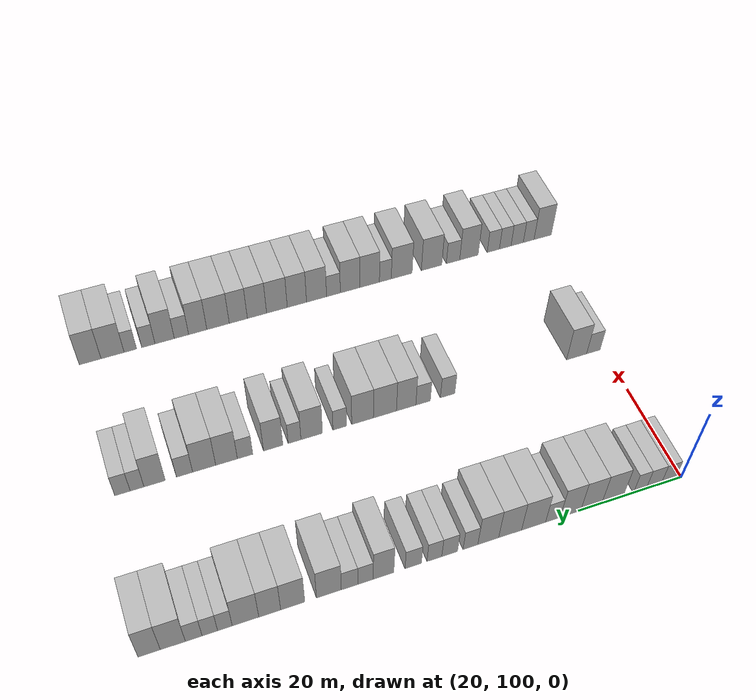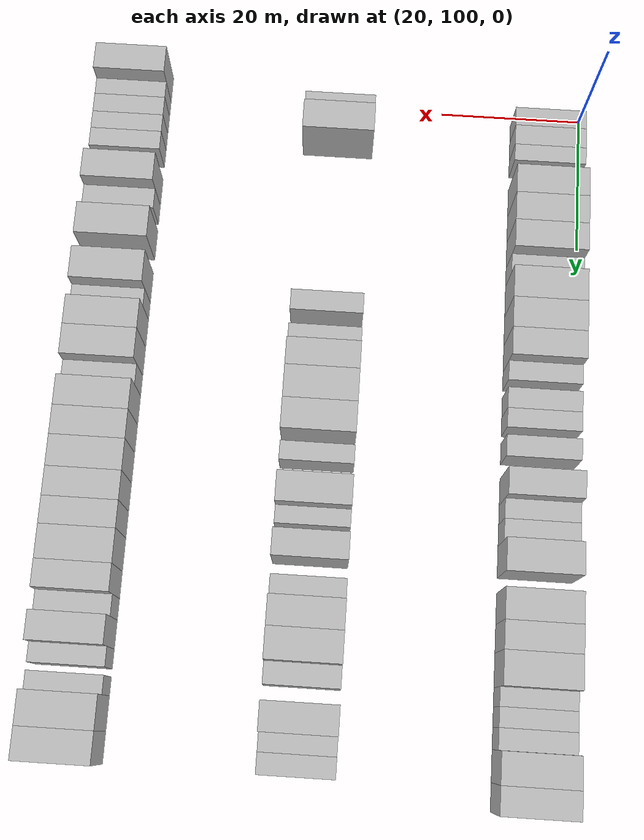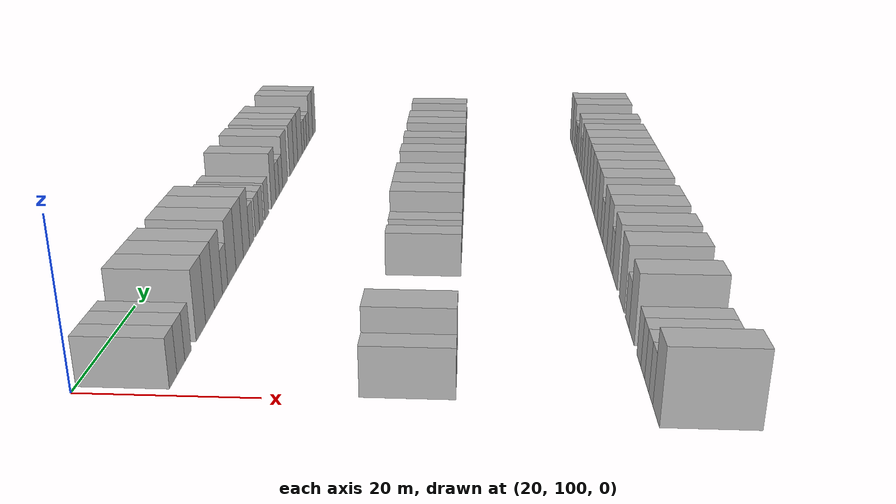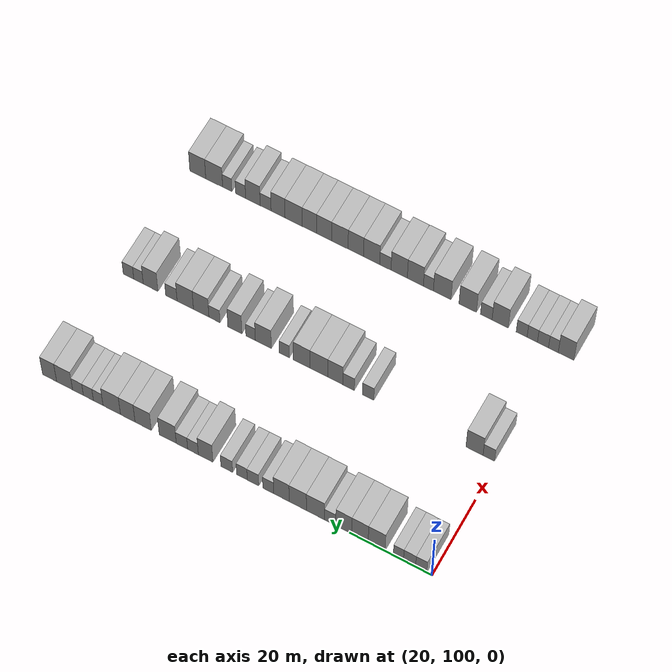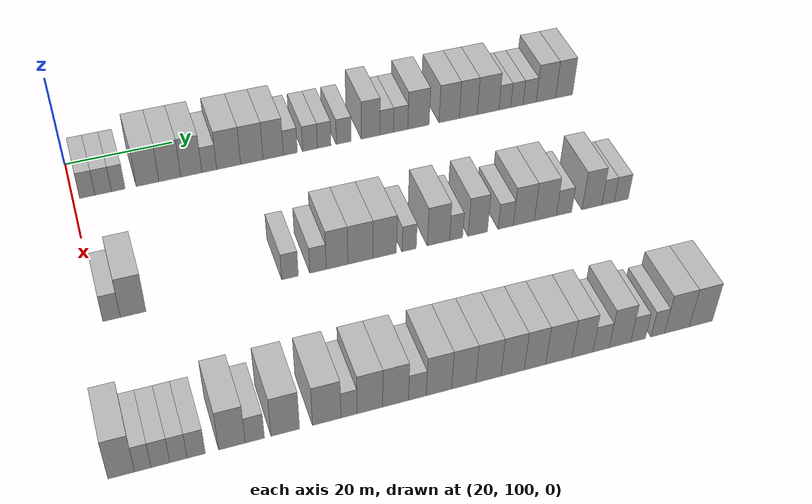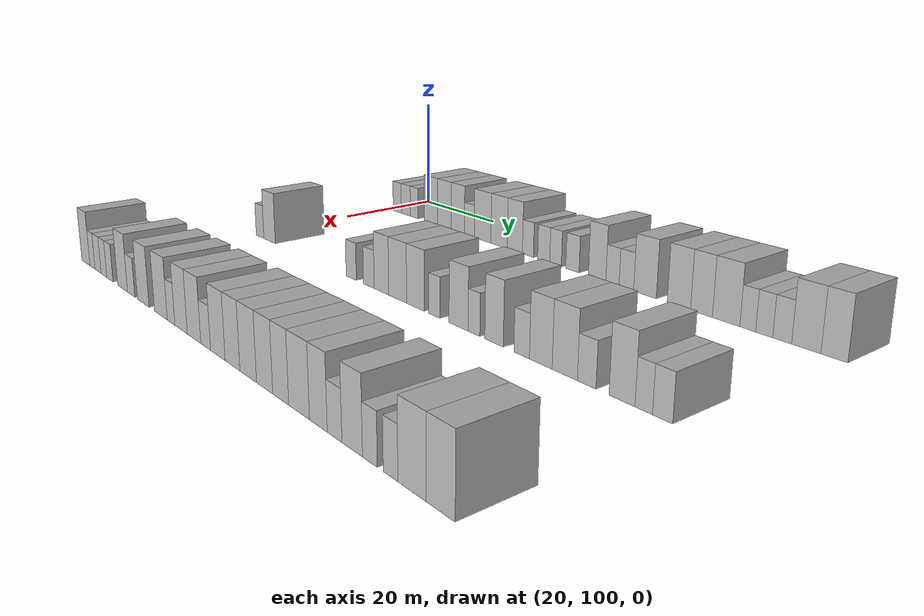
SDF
<sdf version="1.6">
 <world name="default">
  <model name="building_98">
   <static>1</static>
   <pose>25.0000 102.6220 0 0.000000 0.000000 0.000000</pose>
   <link name="link">
    <pose>0 0 3.00 0 0 0</pose>
    <collision name="collision"><geometry><box><size>10.0000 2.7410 6.0000</size></box></geometry></collision>
    <visual name="visual">
     <cast_shadows>0</cast_shadows>
     <geometry><box><size>10.0000 2.7410 6.0000</size></box></geometry>
     <material>
      <script>
       <uri>model://HANNAS_wall/materials/scripts</uri>
       <uri>model://HANNAS_wall/materials/textures</uri>
       <name>vrc/HANNAS_wall</name>
      </script>
     </material>
    </visual>
   </link>
  </model>
  <model name="building_99">
   <static>1</static>
   <pose>25.0000 105.4685 0 0.000000 0.000000 0.000000</pose>
   <link name="link">
    <pose>0 0 3.00 0 0 0</pose>
    <collision name="collision"><geometry><box><size>10.0000 2.9520 6.0000</size></box></geometry></collision>
    <visual name="visual">
     <cast_shadows>0</cast_shadows>
     <geometry><box><size>10.0000 2.9520 6.0000</size></box></geometry>
     <material>
      <script>
       <uri>model://HANNAS_wall/materials/scripts</uri>
       <uri>model://HANNAS_wall/materials/textures</uri>
       <name>vrc/HANNAS_wall</name>
      </script>
     </material>
    </visual>
   </link>
  </model>
  <model name="building_100">
   <static>1</static>
   <pose>25.0000 108.1830 0 0.000000 0.000000 0.000000</pose>
   <link name="link">
    <pose>0 0 3.00 0 0 0</pose>
    <collision name="collision"><geometry><box><size>10.0000 2.4770 6.0000</size></box></geometry></collision>
    <visual name="visual">
     <cast_shadows>0</cast_shadows>
     <geometry><box><size>10.0000 2.4770 6.0000</size></box></geometry>
     <material>
      <script>
       <uri>model://HANNAS_wall/materials/scripts</uri>
       <uri>model://HANNAS_wall/materials/textures</uri>
       <name>vrc/HANNAS_wall</name>
      </script>
     </material>
    </visual>
   </link>
  </model>
  <model name="building_101">
   <static>1</static>
   <pose>25.0000 113.4921 0 0.000000 0.000000 0.000000</pose>
   <link name="link">
    <pose>0 0 4.50 0 0 0</pose>
    <collision name="collision"><geometry><box><size>10.0000 4.1411 9.0000</size></box></geometry></collision>
    <visual name="visual">
     <cast_shadows>0</cast_shadows>
     <geometry><box><size>10.0000 4.1411 9.0000</size></box></geometry>
     <material>
      <script>
       <uri>model://HANNAS_wall/materials/scripts</uri>
       <uri>model://HANNAS_wall/materials/textures</uri>
       <name>vrc/HANNAS_wall</name>
      </script>
     </material>
    </visual>
   </link>
  </model>
  <model name="building_102">
   <static>1</static>
   <pose>25.0000 117.5761 0 0.000000 0.000000 0.000000</pose>
   <link name="link">
    <pose>0 0 4.50 0 0 0</pose>
    <collision name="collision"><geometry><box><size>10.0000 4.0269 9.0000</size></box></geometry></collision>
    <visual name="visual">
     <cast_shadows>0</cast_shadows>
     <geometry><box><size>10.0000 4.0269 9.0000</size></box></geometry>
     <material>
      <script>
       <uri>model://HANNAS_wall/materials/scripts</uri>
       <uri>model://HANNAS_wall/materials/textures</uri>
       <name>vrc/HANNAS_wall</name>
      </script>
     </material>
    </visual>
   </link>
  </model>
  <model name="building_103">
   <static>1</static>
   <pose>25.0000 121.5428 0 0.000000 0.000000 0.000000</pose>
   <link name="link">
    <pose>0 0 4.50 0 0 0</pose>
    <collision name="collision"><geometry><box><size>10.0000 3.9066 9.0000</size></box></geometry></collision>
    <visual name="visual">
     <cast_shadows>0</cast_shadows>
     <geometry><box><size>10.0000 3.9066 9.0000</size></box></geometry>
     <material>
      <script>
       <uri>model://HANNAS_wall/materials/scripts</uri>
       <uri>model://HANNAS_wall/materials/textures</uri>
       <name>vrc/HANNAS_wall</name>
      </script>
     </material>
    </visual>
   </link>
  </model>
  <model name="building_104">
   <static>1</static>
   <pose>25.0000 124.8726 0 0.000000 0.000000 0.000000</pose>
   <link name="link">
    <pose>0 0 3.00 0 0 0</pose>
    <collision name="collision"><geometry><box><size>10.0000 2.7529 6.0000</size></box></geometry></collision>
    <visual name="visual">
     <cast_shadows>0</cast_shadows>
     <geometry><box><size>10.0000 2.7529 6.0000</size></box></geometry>
     <material>
      <script>
       <uri>model://HANNAS_wall/materials/scripts</uri>
       <uri>model://HANNAS_wall/materials/textures</uri>
       <name>vrc/HANNAS_wall</name>
      </script>
     </material>
    </visual>
   </link>
  </model>
  <model name="building_105">
   <static>1</static>
   <pose>25.0000 128.4982 0 0.000000 0.000000 0.000000</pose>
   <link name="link">
    <pose>0 0 4.50 0 0 0</pose>
    <collision name="collision"><geometry><box><size>10.0000 4.4984 9.0000</size></box></geometry></collision>
    <visual name="visual">
     <cast_shadows>0</cast_shadows>
     <geometry><box><size>10.0000 4.4984 9.0000</size></box></geometry>
     <material>
      <script>
       <uri>model://HANNAS_wall/materials/scripts</uri>
       <uri>model://HANNAS_wall/materials/textures</uri>
       <name>vrc/HANNAS_wall</name>
      </script>
     </material>
    </visual>
   </link>
  </model>
  <model name="building_106">
   <static>1</static>
   <pose>25.0000 132.8739 0 0.000000 0.000000 0.000000</pose>
   <link name="link">
    <pose>0 0 4.50 0 0 0</pose>
    <collision name="collision"><geometry><box><size>10.0000 4.2531 9.0000</size></box></geometry></collision>
    <visual name="visual">
     <cast_shadows>0</cast_shadows>
     <geometry><box><size>10.0000 4.2531 9.0000</size></box></geometry>
     <material>
      <script>
       <uri>model://HANNAS_wall/materials/scripts</uri>
       <uri>model://HANNAS_wall/materials/textures</uri>
       <name>vrc/HANNAS_wall</name>
      </script>
     </material>
    </visual>
   </link>
  </model>
  <model name="building_107">
   <static>1</static>
   <pose>25.0000 136.9249 0 0.000000 0.000000 0.000000</pose>
   <link name="link">
    <pose>0 0 4.50 0 0 0</pose>
    <collision name="collision"><geometry><box><size>10.0000 3.8487 9.0000</size></box></geometry></collision>
    <visual name="visual">
     <cast_shadows>0</cast_shadows>
     <geometry><box><size>10.0000 3.8487 9.0000</size></box></geometry>
     <material>
      <script>
       <uri>model://HANNAS_wall/materials/scripts</uri>
       <uri>model://HANNAS_wall/materials/textures</uri>
       <name>vrc/HANNAS_wall</name>
      </script>
     </material>
    </visual>
   </link>
  </model>
  <model name="building_108">
   <static>1</static>
   <pose>25.0000 140.2024 0 0.000000 0.000000 0.000000</pose>
   <link name="link">
    <pose>0 0 3.00 0 0 0</pose>
    <collision name="collision"><geometry><box><size>10.0000 2.7063 6.0000</size></box></geometry></collision>
    <visual name="visual">
     <cast_shadows>0</cast_shadows>
     <geometry><box><size>10.0000 2.7063 6.0000</size></box></geometry>
     <material>
      <script>
       <uri>model://HANNAS_wall/materials/scripts</uri>
       <uri>model://HANNAS_wall/materials/textures</uri>
       <name>vrc/HANNAS_wall</name>
      </script>
     </material>
    </visual>
   </link>
  </model>
  <model name="building_109">
   <static>1</static>
   <pose>25.0000 143.9849 0 0.000000 0.000000 0.000000</pose>
   <link name="link">
    <pose>0 0 3.00 0 0 0</pose>
    <collision name="collision"><geometry><box><size>10.0000 2.8588 6.0000</size></box></geometry></collision>
    <visual name="visual">
     <cast_shadows>0</cast_shadows>
     <geometry><box><size>10.0000 2.8588 6.0000</size></box></geometry>
     <material>
      <script>
       <uri>model://HANNAS_wall/materials/scripts</uri>
       <uri>model://HANNAS_wall/materials/textures</uri>
       <name>vrc/HANNAS_wall</name>
      </script>
     </material>
    </visual>
   </link>
  </model>
  <model name="building_110">
   <static>1</static>
   <pose>25.0000 146.7454 0 0.000000 0.000000 0.000000</pose>
   <link name="link">
    <pose>0 0 3.00 0 0 0</pose>
    <collision name="collision"><geometry><box><size>10.0000 2.6624 6.0000</size></box></geometry></collision>
    <visual name="visual">
     <cast_shadows>0</cast_shadows>
     <geometry><box><size>10.0000 2.6624 6.0000</size></box></geometry>
     <material>
      <script>
       <uri>model://HANNAS_wall/materials/scripts</uri>
       <uri>model://HANNAS_wall/materials/textures</uri>
       <name>vrc/HANNAS_wall</name>
      </script>
     </material>
    </visual>
   </link>
  </model>
  <model name="building_111">
   <static>1</static>
   <pose>25.0000 150.5447 0 0.000000 0.000000 0.000000</pose>
   <link name="link">
    <pose>0 0 3.00 0 0 0</pose>
    <collision name="collision"><geometry><box><size>10.0000 2.9361 6.0000</size></box></geometry></collision>
    <visual name="visual">
     <cast_shadows>0</cast_shadows>
     <geometry><box><size>10.0000 2.9361 6.0000</size></box></geometry>
     <material>
      <script>
       <uri>model://HANNAS_wall/materials/scripts</uri>
       <uri>model://HANNAS_wall/materials/textures</uri>
       <name>vrc/HANNAS_wall</name>
      </script>
     </material>
    </visual>
   </link>
  </model>
  <model name="building_112">
   <static>1</static>
   <pose>25.0000 155.8443 0 0.000000 0.000000 0.000000</pose>
   <link name="link">
    <pose>0 0 4.50 0 0 0</pose>
    <collision name="collision"><geometry><box><size>10.0000 3.6630 9.0000</size></box></geometry></collision>
    <visual name="visual">
     <cast_shadows>0</cast_shadows>
     <geometry><box><size>10.0000 3.6630 9.0000</size></box></geometry>
     <material>
      <script>
       <uri>model://HANNAS_wall/materials/scripts</uri>
       <uri>model://HANNAS_wall/materials/textures</uri>
       <name>vrc/HANNAS_wall</name>
      </script>
     </material>
    </visual>
   </link>
  </model>
  <model name="building_113">
   <static>1</static>
   <pose>25.0000 159.0198 0 0.000000 0.000000 0.000000</pose>
   <link name="link">
    <pose>0 0 3.00 0 0 0</pose>
    <collision name="collision"><geometry><box><size>10.0000 2.6879 6.0000</size></box></geometry></collision>
    <visual name="visual">
     <cast_shadows>0</cast_shadows>
     <geometry><box><size>10.0000 2.6879 6.0000</size></box></geometry>
     <material>
      <script>
       <uri>model://HANNAS_wall/materials/scripts</uri>
       <uri>model://HANNAS_wall/materials/textures</uri>
       <name>vrc/HANNAS_wall</name>
      </script>
     </material>
    </visual>
   </link>
  </model>
  <model name="building_114">
   <static>1</static>
   <pose>25.0000 161.7997 0 0.000000 0.000000 0.000000</pose>
   <link name="link">
    <pose>0 0 3.00 0 0 0</pose>
    <collision name="collision"><geometry><box><size>10.0000 2.8719 6.0000</size></box></geometry></collision>
    <visual name="visual">
     <cast_shadows>0</cast_shadows>
     <geometry><box><size>10.0000 2.8719 6.0000</size></box></geometry>
     <material>
      <script>
       <uri>model://HANNAS_wall/materials/scripts</uri>
       <uri>model://HANNAS_wall/materials/textures</uri>
       <name>vrc/HANNAS_wall</name>
      </script>
     </material>
    </visual>
   </link>
  </model>
  <model name="building_115">
   <static>1</static>
   <pose>25.0000 165.3883 0 0.000000 0.000000 0.000000</pose>
   <link name="link">
    <pose>0 0 4.50 0 0 0</pose>
    <collision name="collision"><geometry><box><size>10.0000 4.3053 9.0000</size></box></geometry></collision>
    <visual name="visual">
     <cast_shadows>0</cast_shadows>
     <geometry><box><size>10.0000 4.3053 9.0000</size></box></geometry>
     <material>
      <script>
       <uri>model://HANNAS_wall/materials/scripts</uri>
       <uri>model://HANNAS_wall/materials/textures</uri>
       <name>vrc/HANNAS_wall</name>
      </script>
     </material>
    </visual>
   </link>
  </model>
  <model name="building_116">
   <static>1</static>
   <pose>25.0000 171.6017 0 0.000000 0.000000 0.000000</pose>
   <link name="link">
    <pose>0 0 4.50 0 0 0</pose>
    <collision name="collision"><geometry><box><size>10.0000 4.1214 9.0000</size></box></geometry></collision>
    <visual name="visual">
     <cast_shadows>0</cast_shadows>
     <geometry><box><size>10.0000 4.1214 9.0000</size></box></geometry>
     <material>
      <script>
       <uri>model://HANNAS_wall/materials/scripts</uri>
       <uri>model://HANNAS_wall/materials/textures</uri>
       <name>vrc/HANNAS_wall</name>
      </script>
     </material>
    </visual>
   </link>
  </model>
  <model name="building_117">
   <static>1</static>
   <pose>25.0000 175.5189 0 0.000000 0.000000 0.000000</pose>
   <link name="link">
    <pose>0 0 4.50 0 0 0</pose>
    <collision name="collision"><geometry><box><size>10.0000 3.7129 9.0000</size></box></geometry></collision>
    <visual name="visual">
     <cast_shadows>0</cast_shadows>
     <geometry><box><size>10.0000 3.7129 9.0000</size></box></geometry>
     <material>
      <script>
       <uri>model://HANNAS_wall/materials/scripts</uri>
       <uri>model://HANNAS_wall/materials/textures</uri>
       <name>vrc/HANNAS_wall</name>
      </script>
     </material>
    </visual>
   </link>
  </model>
  <model name="building_118">
   <static>1</static>
   <pose>25.0000 179.6017 0 0.000000 0.000000 0.000000</pose>
   <link name="link">
    <pose>0 0 4.50 0 0 0</pose>
    <collision name="collision"><geometry><box><size>10.0000 4.4528 9.0000</size></box></geometry></collision>
    <visual name="visual">
     <cast_shadows>0</cast_shadows>
     <geometry><box><size>10.0000 4.4528 9.0000</size></box></geometry>
     <material>
      <script>
       <uri>model://HANNAS_wall/materials/scripts</uri>
       <uri>model://HANNAS_wall/materials/textures</uri>
       <name>vrc/HANNAS_wall</name>
      </script>
     </material>
    </visual>
   </link>
  </model>
  <model name="building_119">
   <static>1</static>
   <pose>25.0000 183.0539 0 0.000000 0.000000 0.000000</pose>
   <link name="link">
    <pose>0 0 3.00 0 0 0</pose>
    <collision name="collision"><geometry><box><size>10.0000 2.4515 6.0000</size></box></geometry></collision>
    <visual name="visual">
     <cast_shadows>0</cast_shadows>
     <geometry><box><size>10.0000 2.4515 6.0000</size></box></geometry>
     <material>
      <script>
       <uri>model://HANNAS_wall/materials/scripts</uri>
       <uri>model://HANNAS_wall/materials/textures</uri>
       <name>vrc/HANNAS_wall</name>
      </script>
     </material>
    </visual>
   </link>
  </model>
  <model name="building_120">
   <static>1</static>
   <pose>25.0000 185.5660 0 0.000000 0.000000 0.000000</pose>
   <link name="link">
    <pose>0 0 3.00 0 0 0</pose>
    <collision name="collision"><geometry><box><size>10.0000 2.5728 6.0000</size></box></geometry></collision>
    <visual name="visual">
     <cast_shadows>0</cast_shadows>
     <geometry><box><size>10.0000 2.5728 6.0000</size></box></geometry>
     <material>
      <script>
       <uri>model://HANNAS_wall/materials/scripts</uri>
       <uri>model://HANNAS_wall/materials/textures</uri>
       <name>vrc/HANNAS_wall</name>
      </script>
     </material>
    </visual>
   </link>
  </model>
  <model name="building_121">
   <static>1</static>
   <pose>25.0000 188.2352 0 0.000000 0.000000 0.000000</pose>
   <link name="link">
    <pose>0 0 3.00 0 0 0</pose>
    <collision name="collision"><geometry><box><size>10.0000 2.7655 6.0000</size></box></geometry></collision>
    <visual name="visual">
     <cast_shadows>0</cast_shadows>
     <geometry><box><size>10.0000 2.7655 6.0000</size></box></geometry>
     <material>
      <script>
       <uri>model://HANNAS_wall/materials/scripts</uri>
       <uri>model://HANNAS_wall/materials/textures</uri>
       <name>vrc/HANNAS_wall</name>
      </script>
     </material>
    </visual>
   </link>
  </model>
  <model name="building_122">
   <static>1</static>
   <pose>25.0000 191.6652 0 0.000000 0.000000 0.000000</pose>
   <link name="link">
    <pose>0 0 4.50 0 0 0</pose>
    <collision name="collision"><geometry><box><size>10.0000 4.0944 9.0000</size></box></geometry></collision>
    <visual name="visual">
     <cast_shadows>0</cast_shadows>
     <geometry><box><size>10.0000 4.0944 9.0000</size></box></geometry>
     <material>
      <script>
       <uri>model://HANNAS_wall/materials/scripts</uri>
       <uri>model://HANNAS_wall/materials/textures</uri>
       <name>vrc/HANNAS_wall</name>
      </script>
     </material>
    </visual>
   </link>
  </model>
  <model name="building_123">
   <static>1</static>
   <pose>25.0000 195.5185 0 0.000000 0.000000 0.000000</pose>
   <link name="link">
    <pose>0 0 4.50 0 0 0</pose>
    <collision name="collision"><geometry><box><size>10.0000 3.6122 9.0000</size></box></geometry></collision>
    <visual name="visual">
     <cast_shadows>0</cast_shadows>
     <geometry><box><size>10.0000 3.6122 9.0000</size></box></geometry>
     <material>
      <script>
       <uri>model://HANNAS_wall/materials/scripts</uri>
       <uri>model://HANNAS_wall/materials/textures</uri>
       <name>vrc/HANNAS_wall</name>
      </script>
     </material>
    </visual>
   </link>
  </model>
  <model name="building_234">
   <static>1</static>
   <pose>55.0000 102.0627 0 0.000000 0.000000 0.000000</pose>
   <link name="link">
    <pose>0 0 3.00 0 0 0</pose>
    <collision name="collision"><geometry><box><size>10.0000 2.8428 6.0000</size></box></geometry></collision>
    <visual name="visual">
     <cast_shadows>0</cast_shadows>
     <geometry><box><size>10.0000 2.8428 6.0000</size></box></geometry>
     <material>
      <script>
       <uri>model://HANNAS_wall/materials/scripts</uri>
       <uri>model://HANNAS_wall/materials/textures</uri>
       <name>vrc/HANNAS_wall</name>
      </script>
     </material>
    </visual>
   </link>
  </model>
  <model name="building_235">
   <static>1</static>
   <pose>55.0000 105.5865 0 0.000000 0.000000 0.000000</pose>
   <link name="link">
    <pose>0 0 4.50 0 0 0</pose>
    <collision name="collision"><geometry><box><size>10.0000 4.2048 9.0000</size></box></geometry></collision>
    <visual name="visual">
     <cast_shadows>0</cast_shadows>
     <geometry><box><size>10.0000 4.2048 9.0000</size></box></geometry>
     <material>
      <script>
       <uri>model://HANNAS_wall/materials/scripts</uri>
       <uri>model://HANNAS_wall/materials/textures</uri>
       <name>vrc/HANNAS_wall</name>
      </script>
     </material>
    </visual>
   </link>
  </model>
  <model name="building_236">
   <static>1</static>
   <pose>55.0000 132.0100 0 0.000000 0.000000 0.000000</pose>
   <link name="link">
    <pose>0 0 3.00 0 0 0</pose>
    <collision name="collision"><geometry><box><size>10.0000 2.8807 6.0000</size></box></geometry></collision>
    <visual name="visual">
     <cast_shadows>0</cast_shadows>
     <geometry><box><size>10.0000 2.8807 6.0000</size></box></geometry>
     <material>
      <script>
       <uri>model://HANNAS_wall/materials/scripts</uri>
       <uri>model://HANNAS_wall/materials/textures</uri>
       <name>vrc/HANNAS_wall</name>
      </script>
     </material>
    </visual>
   </link>
  </model>
  <model name="building_237">
   <static>1</static>
   <pose>55.0000 136.8855 0 0.000000 0.000000 0.000000</pose>
   <link name="link">
    <pose>0 0 3.00 0 0 0</pose>
    <collision name="collision"><geometry><box><size>10.0000 2.8703 6.0000</size></box></geometry></collision>
    <visual name="visual">
     <cast_shadows>0</cast_shadows>
     <geometry><box><size>10.0000 2.8703 6.0000</size></box></geometry>
     <material>
      <script>
       <uri>model://HANNAS_wall/materials/scripts</uri>
       <uri>model://HANNAS_wall/materials/textures</uri>
       <name>vrc/HANNAS_wall</name>
      </script>
     </material>
    </visual>
   </link>
  </model>
  <model name="building_238">
   <static>1</static>
   <pose>55.0000 140.2242 0 0.000000 0.000000 0.000000</pose>
   <link name="link">
    <pose>0 0 4.50 0 0 0</pose>
    <collision name="collision"><geometry><box><size>10.0000 3.8071 9.0000</size></box></geometry></collision>
    <visual name="visual">
     <cast_shadows>0</cast_shadows>
     <geometry><box><size>10.0000 3.8071 9.0000</size></box></geometry>
     <material>
      <script>
       <uri>model://HANNAS_wall/materials/scripts</uri>
       <uri>model://HANNAS_wall/materials/textures</uri>
       <name>vrc/HANNAS_wall</name>
      </script>
     </material>
    </visual>
   </link>
  </model>
  <model name="building_239">
   <static>1</static>
   <pose>55.0000 144.3714 0 0.000000 0.000000 0.000000</pose>
   <link name="link">
    <pose>0 0 4.50 0 0 0</pose>
    <collision name="collision"><geometry><box><size>10.0000 4.4873 9.0000</size></box></geometry></collision>
    <visual name="visual">
     <cast_shadows>0</cast_shadows>
     <geometry><box><size>10.0000 4.4873 9.0000</size></box></geometry>
     <material>
      <script>
       <uri>model://HANNAS_wall/materials/scripts</uri>
       <uri>model://HANNAS_wall/materials/textures</uri>
       <name>vrc/HANNAS_wall</name>
      </script>
     </material>
    </visual>
   </link>
  </model>
  <model name="building_240">
   <static>1</static>
   <pose>55.0000 148.7137 0 0.000000 0.000000 0.000000</pose>
   <link name="link">
    <pose>0 0 4.50 0 0 0</pose>
    <collision name="collision"><geometry><box><size>10.0000 4.1973 9.0000</size></box></geometry></collision>
    <visual name="visual">
     <cast_shadows>0</cast_shadows>
     <geometry><box><size>10.0000 4.1973 9.0000</size></box></geometry>
     <material>
      <script>
       <uri>model://HANNAS_wall/materials/scripts</uri>
       <uri>model://HANNAS_wall/materials/textures</uri>
       <name>vrc/HANNAS_wall</name>
      </script>
     </material>
    </visual>
   </link>
  </model>
  <model name="building_241">
   <static>1</static>
   <pose>55.0000 153.1081 0 0.000000 0.000000 0.000000</pose>
   <link name="link">
    <pose>0 0 3.00 0 0 0</pose>
    <collision name="collision"><geometry><box><size>10.0000 2.5915 6.0000</size></box></geometry></collision>
    <visual name="visual">
     <cast_shadows>0</cast_shadows>
     <geometry><box><size>10.0000 2.5915 6.0000</size></box></geometry>
     <material>
      <script>
       <uri>model://HANNAS_wall/materials/scripts</uri>
       <uri>model://HANNAS_wall/materials/textures</uri>
       <name>vrc/HANNAS_wall</name>
      </script>
     </material>
    </visual>
   </link>
  </model>
  <model name="building_242">
   <static>1</static>
   <pose>55.0000 158.4417 0 0.000000 0.000000 0.000000</pose>
   <link name="link">
    <pose>0 0 4.50 0 0 0</pose>
    <collision name="collision"><geometry><box><size>10.0000 4.0757 9.0000</size></box></geometry></collision>
    <visual name="visual">
     <cast_shadows>0</cast_shadows>
     <geometry><box><size>10.0000 4.0757 9.0000</size></box></geometry>
     <material>
      <script>
       <uri>model://HANNAS_wall/materials/scripts</uri>
       <uri>model://HANNAS_wall/materials/textures</uri>
       <name>vrc/HANNAS_wall</name>
      </script>
     </material>
    </visual>
   </link>
  </model>
  <model name="building_243">
   <static>1</static>
   <pose>55.0000 161.6863 0 0.000000 0.000000 0.000000</pose>
   <link name="link">
    <pose>0 0 3.00 0 0 0</pose>
    <collision name="collision"><geometry><box><size>10.0000 2.4135 6.0000</size></box></geometry></collision>
    <visual name="visual">
     <cast_shadows>0</cast_shadows>
     <geometry><box><size>10.0000 2.4135 6.0000</size></box></geometry>
     <material>
      <script>
       <uri>model://HANNAS_wall/materials/scripts</uri>
       <uri>model://HANNAS_wall/materials/textures</uri>
       <name>vrc/HANNAS_wall</name>
      </script>
     </material>
    </visual>
   </link>
  </model>
  <model name="building_244">
   <static>1</static>
   <pose>55.0000 165.6979 0 0.000000 0.000000 0.000000</pose>
   <link name="link">
    <pose>0 0 4.50 0 0 0</pose>
    <collision name="collision"><geometry><box><size>10.0000 3.6096 9.0000</size></box></geometry></collision>
    <visual name="visual">
     <cast_shadows>0</cast_shadows>
     <geometry><box><size>10.0000 3.6096 9.0000</size></box></geometry>
     <material>
      <script>
       <uri>model://HANNAS_wall/materials/scripts</uri>
       <uri>model://HANNAS_wall/materials/textures</uri>
       <name>vrc/HANNAS_wall</name>
      </script>
     </material>
    </visual>
   </link>
  </model>
  <model name="building_245">
   <static>1</static>
   <pose>55.0000 170.9255 0 0.000000 0.000000 0.000000</pose>
   <link name="link">
    <pose>0 0 3.00 0 0 0</pose>
    <collision name="collision"><geometry><box><size>10.0000 2.8457 6.0000</size></box></geometry></collision>
    <visual name="visual">
     <cast_shadows>0</cast_shadows>
     <geometry><box><size>10.0000 2.8457 6.0000</size></box></geometry>
     <material>
      <script>
       <uri>model://HANNAS_wall/materials/scripts</uri>
       <uri>model://HANNAS_wall/materials/textures</uri>
       <name>vrc/HANNAS_wall</name>
      </script>
     </material>
    </visual>
   </link>
  </model>
  <model name="building_246">
   <static>1</static>
   <pose>55.0000 174.3396 0 0.000000 0.000000 0.000000</pose>
   <link name="link">
    <pose>0 0 4.50 0 0 0</pose>
    <collision name="collision"><geometry><box><size>10.0000 3.9824 9.0000</size></box></geometry></collision>
    <visual name="visual">
     <cast_shadows>0</cast_shadows>
     <geometry><box><size>10.0000 3.9824 9.0000</size></box></geometry>
     <material>
      <script>
       <uri>model://HANNAS_wall/materials/scripts</uri>
       <uri>model://HANNAS_wall/materials/textures</uri>
       <name>vrc/HANNAS_wall</name>
      </script>
     </material>
    </visual>
   </link>
  </model>
  <model name="building_247">
   <static>1</static>
   <pose>55.0000 178.4312 0 0.000000 0.000000 0.000000</pose>
   <link name="link">
    <pose>0 0 4.50 0 0 0</pose>
    <collision name="collision"><geometry><box><size>10.0000 4.2009 9.0000</size></box></geometry></collision>
    <visual name="visual">
     <cast_shadows>0</cast_shadows>
     <geometry><box><size>10.0000 4.2009 9.0000</size></box></geometry>
     <material>
      <script>
       <uri>model://HANNAS_wall/materials/scripts</uri>
       <uri>model://HANNAS_wall/materials/textures</uri>
       <name>vrc/HANNAS_wall</name>
      </script>
     </material>
    </visual>
   </link>
  </model>
  <model name="building_248">
   <static>1</static>
   <pose>55.0000 182.0039 0 0.000000 0.000000 0.000000</pose>
   <link name="link">
    <pose>0 0 3.00 0 0 0</pose>
    <collision name="collision"><geometry><box><size>10.0000 2.9445 6.0000</size></box></geometry></collision>
    <visual name="visual">
     <cast_shadows>0</cast_shadows>
     <geometry><box><size>10.0000 2.9445 6.0000</size></box></geometry>
     <material>
      <script>
       <uri>model://HANNAS_wall/materials/scripts</uri>
       <uri>model://HANNAS_wall/materials/textures</uri>
       <name>vrc/HANNAS_wall</name>
      </script>
     </material>
    </visual>
   </link>
  </model>
  <model name="building_249">
   <static>1</static>
   <pose>55.0000 187.3819 0 0.000000 0.000000 0.000000</pose>
   <link name="link">
    <pose>0 0 4.50 0 0 0</pose>
    <collision name="collision"><geometry><box><size>10.0000 3.8114 9.0000</size></box></geometry></collision>
    <visual name="visual">
     <cast_shadows>0</cast_shadows>
     <geometry><box><size>10.0000 3.8114 9.0000</size></box></geometry>
     <material>
      <script>
       <uri>model://HANNAS_wall/materials/scripts</uri>
       <uri>model://HANNAS_wall/materials/textures</uri>
       <name>vrc/HANNAS_wall</name>
      </script>
     </material>
    </visual>
   </link>
  </model>
  <model name="building_250">
   <static>1</static>
   <pose>55.0000 190.5159 0 0.000000 0.000000 0.000000</pose>
   <link name="link">
    <pose>0 0 3.00 0 0 0</pose>
    <collision name="collision"><geometry><box><size>10.0000 2.4568 6.0000</size></box></geometry></collision>
    <visual name="visual">
     <cast_shadows>0</cast_shadows>
     <geometry><box><size>10.0000 2.4568 6.0000</size></box></geometry>
     <material>
      <script>
       <uri>model://HANNAS_wall/materials/scripts</uri>
       <uri>model://HANNAS_wall/materials/textures</uri>
       <name>vrc/HANNAS_wall</name>
      </script>
     </material>
    </visual>
   </link>
  </model>
  <model name="building_251">
   <static>1</static>
   <pose>55.0000 193.1143 0 0.000000 0.000000 0.000000</pose>
   <link name="link">
    <pose>0 0 3.00 0 0 0</pose>
    <collision name="collision"><geometry><box><size>10.0000 2.7400 6.0000</size></box></geometry></collision>
    <visual name="visual">
     <cast_shadows>0</cast_shadows>
     <geometry><box><size>10.0000 2.7400 6.0000</size></box></geometry>
     <material>
      <script>
       <uri>model://HANNAS_wall/materials/scripts</uri>
       <uri>model://HANNAS_wall/materials/textures</uri>
       <name>vrc/HANNAS_wall</name>
      </script>
     </material>
    </visual>
   </link>
  </model>
  <model name="building_368">
   <static>1</static>
   <pose>85.0000 98.5553 0 0.000000 0.000000 0.000000</pose>
   <link name="link">
    <pose>0 0 4.50 0 0 0</pose>
    <collision name="collision"><geometry><box><size>10.0000 3.8920 9.0000</size></box></geometry></collision>
    <visual name="visual">
     <cast_shadows>0</cast_shadows>
     <geometry><box><size>10.0000 3.8920 9.0000</size></box></geometry>
     <material>
      <script>
       <uri>model://HANNAS_wall/materials/scripts</uri>
       <uri>model://HANNAS_wall/materials/textures</uri>
       <name>vrc/HANNAS_wall</name>
      </script>
     </material>
    </visual>
   </link>
  </model>
  <model name="building_369">
   <static>1</static>
   <pose>85.0000 101.7102 0 0.000000 0.000000 0.000000</pose>
   <link name="link">
    <pose>0 0 3.00 0 0 0</pose>
    <collision name="collision"><geometry><box><size>10.0000 2.4177 6.0000</size></box></geometry></collision>
    <visual name="visual">
     <cast_shadows>0</cast_shadows>
     <geometry><box><size>10.0000 2.4177 6.0000</size></box></geometry>
     <material>
      <script>
       <uri>model://HANNAS_wall/materials/scripts</uri>
       <uri>model://HANNAS_wall/materials/textures</uri>
       <name>vrc/HANNAS_wall</name>
      </script>
     </material>
    </visual>
   </link>
  </model>
  <model name="building_370">
   <static>1</static>
   <pose>85.0000 104.2993 0 0.000000 0.000000 0.000000</pose>
   <link name="link">
    <pose>0 0 3.00 0 0 0</pose>
    <collision name="collision"><geometry><box><size>10.0000 2.7605 6.0000</size></box></geometry></collision>
    <visual name="visual">
     <cast_shadows>0</cast_shadows>
     <geometry><box><size>10.0000 2.7605 6.0000</size></box></geometry>
     <material>
      <script>
       <uri>model://HANNAS_wall/materials/scripts</uri>
       <uri>model://HANNAS_wall/materials/textures</uri>
       <name>vrc/HANNAS_wall</name>
      </script>
     </material>
    </visual>
   </link>
  </model>
  <model name="building_371">
   <static>1</static>
   <pose>85.0000 106.9693 0 0.000000 0.000000 0.000000</pose>
   <link name="link">
    <pose>0 0 3.00 0 0 0</pose>
    <collision name="collision"><geometry><box><size>10.0000 2.5794 6.0000</size></box></geometry></collision>
    <visual name="visual">
     <cast_shadows>0</cast_shadows>
     <geometry><box><size>10.0000 2.5794 6.0000</size></box></geometry>
     <material>
      <script>
       <uri>model://HANNAS_wall/materials/scripts</uri>
       <uri>model://HANNAS_wall/materials/textures</uri>
       <name>vrc/HANNAS_wall</name>
      </script>
     </material>
    </visual>
   </link>
  </model>
  <model name="building_372">
   <static>1</static>
   <pose>85.0000 109.6150 0 0.000000 0.000000 0.000000</pose>
   <link name="link">
    <pose>0 0 3.00 0 0 0</pose>
    <collision name="collision"><geometry><box><size>10.0000 2.7119 6.0000</size></box></geometry></collision>
    <visual name="visual">
     <cast_shadows>0</cast_shadows>
     <geometry><box><size>10.0000 2.7119 6.0000</size></box></geometry>
     <material>
      <script>
       <uri>model://HANNAS_wall/materials/scripts</uri>
       <uri>model://HANNAS_wall/materials/textures</uri>
       <name>vrc/HANNAS_wall</name>
      </script>
     </material>
    </visual>
   </link>
  </model>
  <model name="building_373">
   <static>1</static>
   <pose>85.0000 114.9995 0 0.000000 0.000000 0.000000</pose>
   <link name="link">
    <pose>0 0 4.50 0 0 0</pose>
    <collision name="collision"><geometry><box><size>10.0000 4.0571 9.0000</size></box></geometry></collision>
    <visual name="visual">
     <cast_shadows>0</cast_shadows>
     <geometry><box><size>10.0000 4.0571 9.0000</size></box></geometry>
     <material>
      <script>
       <uri>model://HANNAS_wall/materials/scripts</uri>
       <uri>model://HANNAS_wall/materials/textures</uri>
       <name>vrc/HANNAS_wall</name>
      </script>
     </material>
    </visual>
   </link>
  </model>
  <model name="building_374">
   <static>1</static>
   <pose>85.0000 118.4838 0 0.000000 0.000000 0.000000</pose>
   <link name="link">
    <pose>0 0 3.00 0 0 0</pose>
    <collision name="collision"><geometry><box><size>10.0000 2.9116 6.0000</size></box></geometry></collision>
    <visual name="visual">
     <cast_shadows>0</cast_shadows>
     <geometry><box><size>10.0000 2.9116 6.0000</size></box></geometry>
     <material>
      <script>
       <uri>model://HANNAS_wall/materials/scripts</uri>
       <uri>model://HANNAS_wall/materials/textures</uri>
       <name>vrc/HANNAS_wall</name>
      </script>
     </material>
    </visual>
   </link>
  </model>
  <model name="building_375">
   <static>1</static>
   <pose>85.0000 123.1478 0 0.000000 0.000000 0.000000</pose>
   <link name="link">
    <pose>0 0 4.50 0 0 0</pose>
    <collision name="collision"><geometry><box><size>10.0000 4.4163 9.0000</size></box></geometry></collision>
    <visual name="visual">
     <cast_shadows>0</cast_shadows>
     <geometry><box><size>10.0000 4.4163 9.0000</size></box></geometry>
     <material>
      <script>
       <uri>model://HANNAS_wall/materials/scripts</uri>
       <uri>model://HANNAS_wall/materials/textures</uri>
       <name>vrc/HANNAS_wall</name>
      </script>
     </material>
    </visual>
   </link>
  </model>
  <model name="building_376">
   <static>1</static>
   <pose>85.0000 129.5873 0 0.000000 0.000000 0.000000</pose>
   <link name="link">
    <pose>0 0 4.50 0 0 0</pose>
    <collision name="collision"><geometry><box><size>10.0000 4.4626 9.0000</size></box></geometry></collision>
    <visual name="visual">
     <cast_shadows>0</cast_shadows>
     <geometry><box><size>10.0000 4.4626 9.0000</size></box></geometry>
     <material>
      <script>
       <uri>model://HANNAS_wall/materials/scripts</uri>
       <uri>model://HANNAS_wall/materials/textures</uri>
       <name>vrc/HANNAS_wall</name>
      </script>
     </material>
    </visual>
   </link>
  </model>
  <model name="building_377">
   <static>1</static>
   <pose>85.0000 133.0823 0 0.000000 0.000000 0.000000</pose>
   <link name="link">
    <pose>0 0 3.00 0 0 0</pose>
    <collision name="collision"><geometry><box><size>10.0000 2.5275 6.0000</size></box></geometry></collision>
    <visual name="visual">
     <cast_shadows>0</cast_shadows>
     <geometry><box><size>10.0000 2.5275 6.0000</size></box></geometry>
     <material>
      <script>
       <uri>model://HANNAS_wall/materials/scripts</uri>
       <uri>model://HANNAS_wall/materials/textures</uri>
       <name>vrc/HANNAS_wall</name>
      </script>
     </material>
    </visual>
   </link>
  </model>
  <model name="building_378">
   <static>1</static>
   <pose>85.0000 136.3898 0 0.000000 0.000000 0.000000</pose>
   <link name="link">
    <pose>0 0 4.50 0 0 0</pose>
    <collision name="collision"><geometry><box><size>10.0000 4.0875 9.0000</size></box></geometry></collision>
    <visual name="visual">
     <cast_shadows>0</cast_shadows>
     <geometry><box><size>10.0000 4.0875 9.0000</size></box></geometry>
     <material>
      <script>
       <uri>model://HANNAS_wall/materials/scripts</uri>
       <uri>model://HANNAS_wall/materials/textures</uri>
       <name>vrc/HANNAS_wall</name>
      </script>
     </material>
    </visual>
   </link>
  </model>
  <model name="building_379">
   <static>1</static>
   <pose>85.0000 140.5090 0 0.000000 0.000000 0.000000</pose>
   <link name="link">
    <pose>0 0 4.50 0 0 0</pose>
    <collision name="collision"><geometry><box><size>10.0000 4.1508 9.0000</size></box></geometry></collision>
    <visual name="visual">
     <cast_shadows>0</cast_shadows>
     <geometry><box><size>10.0000 4.1508 9.0000</size></box></geometry>
     <material>
      <script>
       <uri>model://HANNAS_wall/materials/scripts</uri>
       <uri>model://HANNAS_wall/materials/textures</uri>
       <name>vrc/HANNAS_wall</name>
      </script>
     </material>
    </visual>
   </link>
  </model>
  <model name="building_380">
   <static>1</static>
   <pose>85.0000 144.0252 0 0.000000 0.000000 0.000000</pose>
   <link name="link">
    <pose>0 0 3.00 0 0 0</pose>
    <collision name="collision"><geometry><box><size>10.0000 2.8815 6.0000</size></box></geometry></collision>
    <visual name="visual">
     <cast_shadows>0</cast_shadows>
     <geometry><box><size>10.0000 2.8815 6.0000</size></box></geometry>
     <material>
      <script>
       <uri>model://HANNAS_wall/materials/scripts</uri>
       <uri>model://HANNAS_wall/materials/textures</uri>
       <name>vrc/HANNAS_wall</name>
      </script>
     </material>
    </visual>
   </link>
  </model>
  <model name="building_381">
   <static>1</static>
   <pose>85.0000 147.5390 0 0.000000 0.000000 0.000000</pose>
   <link name="link">
    <pose>0 0 4.50 0 0 0</pose>
    <collision name="collision"><geometry><box><size>10.0000 4.1462 9.0000</size></box></geometry></collision>
    <visual name="visual">
     <cast_shadows>0</cast_shadows>
     <geometry><box><size>10.0000 4.1462 9.0000</size></box></geometry>
     <material>
      <script>
       <uri>model://HANNAS_wall/materials/scripts</uri>
       <uri>model://HANNAS_wall/materials/textures</uri>
       <name>vrc/HANNAS_wall</name>
      </script>
     </material>
    </visual>
   </link>
  </model>
  <model name="building_382">
   <static>1</static>
   <pose>85.0000 151.5938 0 0.000000 0.000000 0.000000</pose>
   <link name="link">
    <pose>0 0 4.50 0 0 0</pose>
    <collision name="collision"><geometry><box><size>10.0000 3.9635 9.0000</size></box></geometry></collision>
    <visual name="visual">
     <cast_shadows>0</cast_shadows>
     <geometry><box><size>10.0000 3.9635 9.0000</size></box></geometry>
     <material>
      <script>
       <uri>model://HANNAS_wall/materials/scripts</uri>
       <uri>model://HANNAS_wall/materials/textures</uri>
       <name>vrc/HANNAS_wall</name>
      </script>
     </material>
    </visual>
   </link>
  </model>
  <model name="building_383">
   <static>1</static>
   <pose>85.0000 155.6881 0 0.000000 0.000000 0.000000</pose>
   <link name="link">
    <pose>0 0 4.50 0 0 0</pose>
    <collision name="collision"><geometry><box><size>10.0000 4.2250 9.0000</size></box></geometry></collision>
    <visual name="visual">
     <cast_shadows>0</cast_shadows>
     <geometry><box><size>10.0000 4.2250 9.0000</size></box></geometry>
     <material>
      <script>
       <uri>model://HANNAS_wall/materials/scripts</uri>
       <uri>model://HANNAS_wall/materials/textures</uri>
       <name>vrc/HANNAS_wall</name>
      </script>
     </material>
    </visual>
   </link>
  </model>
  <model name="building_384">
   <static>1</static>
   <pose>85.0000 159.7534 0 0.000000 0.000000 0.000000</pose>
   <link name="link">
    <pose>0 0 4.50 0 0 0</pose>
    <collision name="collision"><geometry><box><size>10.0000 3.9055 9.0000</size></box></geometry></collision>
    <visual name="visual">
     <cast_shadows>0</cast_shadows>
     <geometry><box><size>10.0000 3.9055 9.0000</size></box></geometry>
     <material>
      <script>
       <uri>model://HANNAS_wall/materials/scripts</uri>
       <uri>model://HANNAS_wall/materials/textures</uri>
       <name>vrc/HANNAS_wall</name>
      </script>
     </material>
    </visual>
   </link>
  </model>
  <model name="building_385">
   <static>1</static>
   <pose>85.0000 163.5298 0 0.000000 0.000000 0.000000</pose>
   <link name="link">
    <pose>0 0 4.50 0 0 0</pose>
    <collision name="collision"><geometry><box><size>10.0000 3.6474 9.0000</size></box></geometry></collision>
    <visual name="visual">
     <cast_shadows>0</cast_shadows>
     <geometry><box><size>10.0000 3.6474 9.0000</size></box></geometry>
     <material>
      <script>
       <uri>model://HANNAS_wall/materials/scripts</uri>
       <uri>model://HANNAS_wall/materials/textures</uri>
       <name>vrc/HANNAS_wall</name>
      </script>
     </material>
    </visual>
   </link>
  </model>
  <model name="building_386">
   <static>1</static>
   <pose>85.0000 167.5944 0 0.000000 0.000000 0.000000</pose>
   <link name="link">
    <pose>0 0 4.50 0 0 0</pose>
    <collision name="collision"><geometry><box><size>10.0000 4.4818 9.0000</size></box></geometry></collision>
    <visual name="visual">
     <cast_shadows>0</cast_shadows>
     <geometry><box><size>10.0000 4.4818 9.0000</size></box></geometry>
     <material>
      <script>
       <uri>model://HANNAS_wall/materials/scripts</uri>
       <uri>model://HANNAS_wall/materials/textures</uri>
       <name>vrc/HANNAS_wall</name>
      </script>
     </material>
    </visual>
   </link>
  </model>
  <model name="building_387">
   <static>1</static>
   <pose>85.0000 171.6443 0 0.000000 0.000000 0.000000</pose>
   <link name="link">
    <pose>0 0 4.50 0 0 0</pose>
    <collision name="collision"><geometry><box><size>10.0000 3.6182 9.0000</size></box></geometry></collision>
    <visual name="visual">
     <cast_shadows>0</cast_shadows>
     <geometry><box><size>10.0000 3.6182 9.0000</size></box></geometry>
     <material>
      <script>
       <uri>model://HANNAS_wall/materials/scripts</uri>
       <uri>model://HANNAS_wall/materials/textures</uri>
       <name>vrc/HANNAS_wall</name>
      </script>
     </material>
    </visual>
   </link>
  </model>
  <model name="building_388">
   <static>1</static>
   <pose>85.0000 174.8672 0 0.000000 0.000000 0.000000</pose>
   <link name="link">
    <pose>0 0 3.00 0 0 0</pose>
    <collision name="collision"><geometry><box><size>10.0000 2.8275 6.0000</size></box></geometry></collision>
    <visual name="visual">
     <cast_shadows>0</cast_shadows>
     <geometry><box><size>10.0000 2.8275 6.0000</size></box></geometry>
     <material>
      <script>
       <uri>model://HANNAS_wall/materials/scripts</uri>
       <uri>model://HANNAS_wall/materials/textures</uri>
       <name>vrc/HANNAS_wall</name>
      </script>
     </material>
    </visual>
   </link>
  </model>
  <model name="building_389">
   <static>1</static>
   <pose>85.0000 178.1752 0 0.000000 0.000000 0.000000</pose>
   <link name="link">
    <pose>0 0 4.50 0 0 0</pose>
    <collision name="collision"><geometry><box><size>10.0000 3.7886 9.0000</size></box></geometry></collision>
    <visual name="visual">
     <cast_shadows>0</cast_shadows>
     <geometry><box><size>10.0000 3.7886 9.0000</size></box></geometry>
     <material>
      <script>
       <uri>model://HANNAS_wall/materials/scripts</uri>
       <uri>model://HANNAS_wall/materials/textures</uri>
       <name>vrc/HANNAS_wall</name>
      </script>
     </material>
    </visual>
   </link>
  </model>
  <model name="building_390">
   <static>1</static>
   <pose>85.0000 181.3647 0 0.000000 0.000000 0.000000</pose>
   <link name="link">
    <pose>0 0 3.00 0 0 0</pose>
    <collision name="collision"><geometry><box><size>10.0000 2.5904 6.0000</size></box></geometry></collision>
    <visual name="visual">
     <cast_shadows>0</cast_shadows>
     <geometry><box><size>10.0000 2.5904 6.0000</size></box></geometry>
     <material>
      <script>
       <uri>model://HANNAS_wall/materials/scripts</uri>
       <uri>model://HANNAS_wall/materials/textures</uri>
       <name>vrc/HANNAS_wall</name>
      </script>
     </material>
    </visual>
   </link>
  </model>
  <model name="building_391">
   <static>1</static>
   <pose>85.0000 184.8683 0 0.000000 0.000000 0.000000</pose>
   <link name="link">
    <pose>0 0 3.00 0 0 0</pose>
    <collision name="collision"><geometry><box><size>10.0000 2.4168 6.0000</size></box></geometry></collision>
    <visual name="visual">
     <cast_shadows>0</cast_shadows>
     <geometry><box><size>10.0000 2.4168 6.0000</size></box></geometry>
     <material>
      <script>
       <uri>model://HANNAS_wall/materials/scripts</uri>
       <uri>model://HANNAS_wall/materials/textures</uri>
       <name>vrc/HANNAS_wall</name>
      </script>
     </material>
    </visual>
   </link>
  </model>
  <model name="building_392">
   <static>1</static>
   <pose>85.0000 188.2930 0 0.000000 0.000000 0.000000</pose>
   <link name="link">
    <pose>0 0 4.50 0 0 0</pose>
    <collision name="collision"><geometry><box><size>10.0000 4.4327 9.0000</size></box></geometry></collision>
    <visual name="visual">
     <cast_shadows>0</cast_shadows>
     <geometry><box><size>10.0000 4.4327 9.0000</size></box></geometry>
     <material>
      <script>
       <uri>model://HANNAS_wall/materials/scripts</uri>
       <uri>model://HANNAS_wall/materials/textures</uri>
       <name>vrc/HANNAS_wall</name>
      </script>
     </material>
    </visual>
   </link>
  </model>
  <model name="building_393">
   <static>1</static>
   <pose>85.0000 192.5942 0 0.000000 0.000000 0.000000</pose>
   <link name="link">
    <pose>0 0 4.50 0 0 0</pose>
    <collision name="collision"><geometry><box><size>10.0000 4.1696 9.0000</size></box></geometry></collision>
    <visual name="visual">
     <cast_shadows>0</cast_shadows>
     <geometry><box><size>10.0000 4.1696 9.0000</size></box></geometry>
     <material>
      <script>
       <uri>model://HANNAS_wall/materials/scripts</uri>
       <uri>model://HANNAS_wall/materials/textures</uri>
       <name>vrc/HANNAS_wall</name>
      </script>
     </material>
    </visual>
   </link>
  </model>
 </world>
</sdf>
